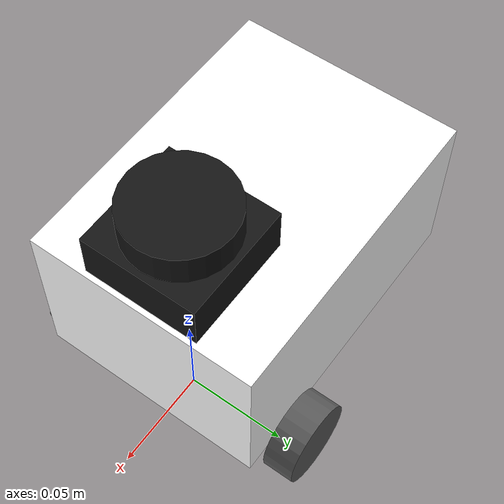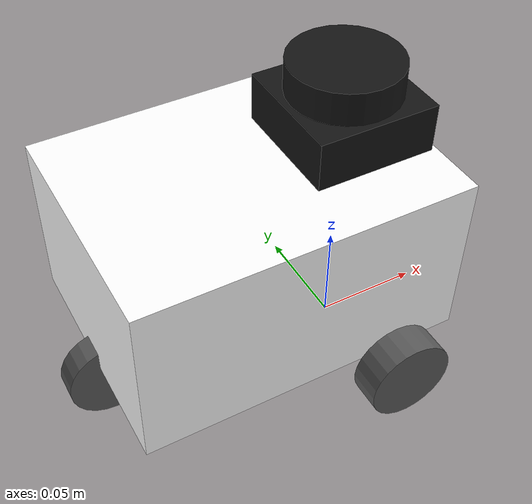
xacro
<?xml version="1.0"?>
<robot name="mcub" xmlns:xacro="http://www.ros.org/wiki/xacro"
       xmlns:cubsim="https://github.com/tomoki-na/Cub_ROS/cubsim">

  <!-- Dimensions retained from cub_description/urdf/mcub.urdf. -->
  <xacro:arg name="base_size_x" default="0.150"/>
  <xacro:arg name="base_size_y" default="0.110"/>
  <xacro:arg name="base_size_z" default="0.080"/>
  <xacro:arg name="base_visual_x" default="-0.045"/>
  <xacro:arg name="base_visual_z" default="0.070"/>

  <!-- TODO(INPUT): Provisional physical properties. -->
  <xacro:arg name="base_mass" default="1.000"/>
  <xacro:arg name="base_cog_x" default="-0.045"/>
  <xacro:arg name="base_cog_y" default="0.000"/>
  <xacro:arg name="base_cog_z" default="0.040"/>
  <xacro:arg name="base_ixx" default="0.0020"/>
  <xacro:arg name="base_ixy" default="0.0"/>
  <xacro:arg name="base_ixz" default="0.0"/>
  <xacro:arg name="base_iyy" default="0.0030"/>
  <xacro:arg name="base_iyz" default="0.0"/>
  <xacro:arg name="base_izz" default="0.0040"/>

  <!-- Wheel diameter is confirmed. Track requires resolving the 0.130/0.125 m discrepancy above. -->
  <xacro:arg name="wheel_radius" default="0.020"/>
  <xacro:arg name="wheel_track" default="0.125"/>
  <xacro:arg name="wheel_x" default="0.000"/>
  <xacro:arg name="wheel_width" default="0.015"/>
  <xacro:arg name="wheel_mass" default="0.050"/>
  <xacro:arg name="wheel_ixx" default="0.000012"/>
  <xacro:arg name="wheel_iyy" default="0.000010"/>
  <xacro:arg name="wheel_izz" default="0.000012"/>
  <xacro:arg name="wheel_joint_damping" default="0.01"/>
  <xacro:arg name="wheel_joint_friction" default="0.01"/>
  <xacro:arg name="wheel_effort" default="1.0"/>
  <xacro:arg name="wheel_velocity" default="20.0"/>

  <xacro:arg name="caster_pivot_x" default="-0.100"/>
  <xacro:arg name="caster_pivot_z" default="0.040"/>
  <xacro:arg name="caster_trail" default="0.015"/>
  <xacro:arg name="caster_wheel_radius" default="0.020"/>
  <xacro:arg name="caster_wheel_width" default="0.012"/>
  <xacro:arg name="caster_swivel_mass" default="0.020"/>
  <xacro:arg name="caster_wheel_mass" default="0.020"/>
  <xacro:arg name="caster_swivel_inertia" default="0.000010"/>
  <xacro:arg name="caster_wheel_ixx" default="0.000005"/>
  <xacro:arg name="caster_wheel_iyy" default="0.000004"/>
  <xacro:arg name="caster_wheel_izz" default="0.000005"/>

  <xacro:arg name="lidar_scan_x" default="0.000"/>
  <xacro:arg name="lidar_scan_y" default="0.000"/>
  <xacro:arg name="lidar_scan_z" default="0.140"/>
  <xacro:arg name="lidar_yaw" default="3.141592653589793"/>
  <xacro:arg name="lidar_head_radius" default="0.025"/>
  <xacro:arg name="lidar_head_height" default="0.015"/>
  <xacro:arg name="lidar_base_size_x" default="0.055"/>
  <xacro:arg name="lidar_base_size_y" default="0.055"/>
  <xacro:arg name="lidar_base_size_z" default="0.025"/>
  <xacro:arg name="lidar_base_center_z" default="-0.020"/>
  <!-- TODO(INPUT): Provisional center of mass relative to the scan-line frame. -->
  <xacro:arg name="lidar_cog_z" default="-0.0125"/>
  <xacro:arg name="lidar_mass" default="0.110"/>
  <xacro:arg name="lidar_ixx" default="0.000025"/>
  <xacro:arg name="lidar_iyy" default="0.000025"/>
  <xacro:arg name="lidar_izz" default="0.000050"/>

  <xacro:property name="base_size_x" value="$(arg base_size_x)"/>
  <xacro:property name="base_size_y" value="$(arg base_size_y)"/>
  <xacro:property name="base_size_z" value="$(arg base_size_z)"/>
  <xacro:property name="base_visual_x" value="$(arg base_visual_x)"/>
  <xacro:property name="base_visual_z" value="$(arg base_visual_z)"/>
  <xacro:property name="base_mass" value="$(arg base_mass)"/>
  <xacro:property name="base_cog_x" value="$(arg base_cog_x)"/>
  <xacro:property name="base_cog_y" value="$(arg base_cog_y)"/>
  <xacro:property name="base_cog_z" value="$(arg base_cog_z)"/>
  <xacro:property name="base_ixx" value="$(arg base_ixx)"/>
  <xacro:property name="base_ixy" value="$(arg base_ixy)"/>
  <xacro:property name="base_ixz" value="$(arg base_ixz)"/>
  <xacro:property name="base_iyy" value="$(arg base_iyy)"/>
  <xacro:property name="base_iyz" value="$(arg base_iyz)"/>
  <xacro:property name="base_izz" value="$(arg base_izz)"/>
  <xacro:property name="wheel_radius" value="$(arg wheel_radius)"/>
  <xacro:property name="wheel_track" value="$(arg wheel_track)"/>
  <xacro:property name="wheel_x" value="$(arg wheel_x)"/>
  <xacro:property name="wheel_width" value="$(arg wheel_width)"/>
  <xacro:property name="wheel_mass" value="$(arg wheel_mass)"/>
  <xacro:property name="wheel_ixx" value="$(arg wheel_ixx)"/>
  <xacro:property name="wheel_iyy" value="$(arg wheel_iyy)"/>
  <xacro:property name="wheel_izz" value="$(arg wheel_izz)"/>
  <xacro:property name="wheel_joint_damping" value="$(arg wheel_joint_damping)"/>
  <xacro:property name="wheel_joint_friction" value="$(arg wheel_joint_friction)"/>
  <xacro:property name="wheel_effort" value="$(arg wheel_effort)"/>
  <xacro:property name="wheel_velocity" value="$(arg wheel_velocity)"/>
  <xacro:property name="caster_pivot_x" value="$(arg caster_pivot_x)"/>
  <xacro:property name="caster_pivot_z" value="$(arg caster_pivot_z)"/>
  <xacro:property name="caster_trail" value="$(arg caster_trail)"/>
  <xacro:property name="caster_wheel_radius" value="$(arg caster_wheel_radius)"/>
  <xacro:property name="caster_wheel_width" value="$(arg caster_wheel_width)"/>
  <xacro:property name="caster_swivel_mass" value="$(arg caster_swivel_mass)"/>
  <xacro:property name="caster_wheel_mass" value="$(arg caster_wheel_mass)"/>
  <xacro:property name="caster_swivel_inertia" value="$(arg caster_swivel_inertia)"/>
  <xacro:property name="caster_wheel_ixx" value="$(arg caster_wheel_ixx)"/>
  <xacro:property name="caster_wheel_iyy" value="$(arg caster_wheel_iyy)"/>
  <xacro:property name="caster_wheel_izz" value="$(arg caster_wheel_izz)"/>
  <xacro:property name="lidar_scan_x" value="$(arg lidar_scan_x)"/>
  <xacro:property name="lidar_scan_y" value="$(arg lidar_scan_y)"/>
  <xacro:property name="lidar_scan_z" value="$(arg lidar_scan_z)"/>
  <xacro:property name="lidar_yaw" value="$(arg lidar_yaw)"/>
  <xacro:property name="lidar_head_radius" value="$(arg lidar_head_radius)"/>
  <xacro:property name="lidar_head_height" value="$(arg lidar_head_height)"/>
  <xacro:property name="lidar_base_size_x" value="$(arg lidar_base_size_x)"/>
  <xacro:property name="lidar_base_size_y" value="$(arg lidar_base_size_y)"/>
  <xacro:property name="lidar_base_size_z" value="$(arg lidar_base_size_z)"/>
  <xacro:property name="lidar_base_center_z" value="$(arg lidar_base_center_z)"/>
  <xacro:property name="lidar_cog_z" value="$(arg lidar_cog_z)"/>
  <xacro:property name="lidar_mass" value="$(arg lidar_mass)"/>
  <xacro:property name="lidar_ixx" value="$(arg lidar_ixx)"/>
  <xacro:property name="lidar_iyy" value="$(arg lidar_iyy)"/>
  <xacro:property name="lidar_izz" value="$(arg lidar_izz)"/>

  <material name="mcub_white">
    <color rgba="1 1 1 1"/>
  </material>
  <material name="mcub_gray">
    <color rgba="0.35 0.35 0.35 1"/>
  </material>
  <material name="mcub_black">
    <color rgba="0.08 0.08 0.08 1"/>
  </material>

  <xacro:macro name="drive_wheel" params="side y sign">
    <joint name="${side}_wheel_joint" type="continuous">
      <parent link="base_link"/>
      <child link="${side}_wheel_link"/>
      <origin xyz="${wheel_x} ${y} ${wheel_radius}" rpy="0 0 0"/>
      <axis xyz="0 ${sign} 0"/>
      <limit effort="${wheel_effort}" velocity="${wheel_velocity}"/>
      <dynamics damping="${wheel_joint_damping}" friction="${wheel_joint_friction}"/>
    </joint>
    <link name="${side}_wheel_link">
      <inertial>
        <mass value="${wheel_mass}"/>
        <inertia ixx="${wheel_ixx}" ixy="0" ixz="0"
                 iyy="${wheel_iyy}" iyz="0" izz="${wheel_izz}"/>
      </inertial>
      <visual>
        <origin rpy="${pi / 2} 0 0"/>
        <geometry>
          <cylinder radius="${wheel_radius}" length="${wheel_width}"/>
        </geometry>
        <material name="mcub_gray"/>
      </visual>
      <collision>
        <origin rpy="${pi / 2} 0 0"/>
        <geometry>
          <cylinder radius="${wheel_radius}" length="${wheel_width}"/>
        </geometry>
      </collision>
    </link>
  </xacro:macro>

  <link name="base_link">
    <inertial>
      <origin xyz="${base_cog_x} ${base_cog_y} ${base_cog_z}" rpy="0 0 0"/>
      <mass value="${base_mass}"/>
      <inertia ixx="${base_ixx}" ixy="${base_ixy}" ixz="${base_ixz}"
               iyy="${base_iyy}" iyz="${base_iyz}" izz="${base_izz}"/>
    </inertial>
    <visual>
      <origin xyz="${base_visual_x} 0 ${base_visual_z}" rpy="0 0 0"/>
      <geometry>
        <box size="${base_size_x} ${base_size_y} ${base_size_z}"/>
      </geometry>
      <material name="mcub_white"/>
    </visual>
    <collision>
      <origin xyz="${base_visual_x} 0 ${base_visual_z}" rpy="0 0 0"/>
      <geometry>
        <box size="${base_size_x} ${base_size_y} ${base_size_z}"/>
      </geometry>
    </collision>
  </link>

  <joint name="base_to_footprint" type="fixed">
    <parent link="base_link"/>
    <child link="base_footprint"/>
    <origin xyz="0 0 0" rpy="0 0 0"/>
  </joint>
  <link name="base_footprint"/>

  <xacro:drive_wheel side="left" y="${wheel_track / 2}" sign="1"/>
  <xacro:drive_wheel side="right" y="${-wheel_track / 2}" sign="1"/>

  <joint name="caster_swivel_joint" type="fixed">
    <parent link="base_link"/>
    <child link="caster_swivel_link"/>
    <origin xyz="${caster_pivot_x} 0 ${caster_pivot_z}" rpy="0 0 0"/>
  </joint>
  <link name="caster_swivel_link">
    <inertial>
      <origin xyz="${-caster_trail / 2} 0 ${-caster_pivot_z / 2}" rpy="0 0 0"/>
      <mass value="${caster_swivel_mass}"/>
      <inertia ixx="${caster_swivel_inertia}" ixy="0" ixz="0"
               iyy="${caster_swivel_inertia}" iyz="0" izz="${caster_swivel_inertia}"/>
    </inertial>
    <visual>
      <origin xyz="${-caster_trail / 2} 0 ${-caster_pivot_z / 2}" rpy="0 ${pi / 2} 0"/>
      <geometry>
        <cylinder radius="0.004" length="${caster_trail}"/>
      </geometry>
      <material name="mcub_gray"/>
    </visual>
    <collision>
      <origin xyz="${-caster_trail / 2} 0 ${-caster_pivot_z / 2}" rpy="0 ${pi / 2} 0"/>
      <geometry>
        <cylinder radius="0.004" length="${caster_trail}"/>
      </geometry>
    </collision>
  </link>

  <joint name="caster_wheel_joint" type="fixed">
    <parent link="caster_swivel_link"/>
    <child link="caster_wheel_link"/>
    <origin xyz="${-caster_trail} 0 ${caster_wheel_radius - caster_pivot_z}" rpy="0 0 0"/>
  </joint>
  <link name="caster_wheel_link">
    <inertial>
      <mass value="${caster_wheel_mass}"/>
      <inertia ixx="${caster_wheel_ixx}" ixy="0" ixz="0"
               iyy="${caster_wheel_iyy}" iyz="0" izz="${caster_wheel_izz}"/>
    </inertial>
    <visual>
      <origin rpy="${pi / 2} 0 0"/>
      <geometry>
        <cylinder radius="${caster_wheel_radius}" length="${caster_wheel_width}"/>
      </geometry>
      <material name="mcub_gray"/>
    </visual>
    <collision>
      <geometry>
        <sphere radius="${caster_wheel_radius}"/>
      </geometry>
    </collision>
  </link>

  <!-- SLC1_link is the ROS LaserScan frame and is located on the scan plane. -->
  <joint name="base_to_SLC1" type="fixed">
    <parent link="base_link"/>
    <child link="SLC1_link"/>
    <origin xyz="${lidar_scan_x} ${lidar_scan_y} ${lidar_scan_z}"
            rpy="0 0 ${lidar_yaw}"/>
  </joint>
  <link name="SLC1_link">
    <inertial>
      <origin xyz="0 0 ${lidar_cog_z}" rpy="0 0 0"/>
      <mass value="${lidar_mass}"/>
      <inertia ixx="${lidar_ixx}" ixy="0" ixz="0"
               iyy="${lidar_iyy}" iyz="0" izz="${lidar_izz}"/>
    </inertial>
    <!-- The cylinder center is the LiDAR scan line/plane. -->
    <visual>
      <geometry>
        <cylinder radius="${lidar_head_radius}" length="${lidar_head_height}"/>
      </geometry>
      <material name="mcub_black"/>
    </visual>
    <collision>
      <geometry>
        <cylinder radius="${lidar_head_radius}" length="${lidar_head_height}"/>
      </geometry>
    </collision>
  </link>

  <!-- Preserve the SLC1_base frame used by the current RViz configuration. -->
  <joint name="SLC1_base_joint" type="fixed">
    <parent link="SLC1_link"/>
    <child link="SLC1_base"/>
    <origin xyz="0 0 0" rpy="0 0 0"/>
  </joint>
  <link name="SLC1_base">
    <visual>
      <origin xyz="0 0 ${lidar_base_center_z}" rpy="0 0 0"/>

      <geometry>
        <box size="${lidar_base_size_x} ${lidar_base_size_y} ${lidar_base_size_z}"/>
      </geometry>
      <material name="mcub_black"/>
    </visual>
    <collision>
      <origin xyz="0 0 ${lidar_base_center_z}" rpy="0 0 0"/>
      <geometry>
        <box size="${lidar_base_size_x} ${lidar_base_size_y} ${lidar_base_size_z}"/>
      </geometry>
    </collision>
  </link>

  <!-- CubSim Editor import metadata. UnitySensorsROS is intentionally not used. -->
  <cubsim:sensor name="slc1" type="raycast_lidar" link="SLC1_link"
                 frequency="10.0" samples="500" min_range="0.05" max_range="12.0"/>
</robot>
